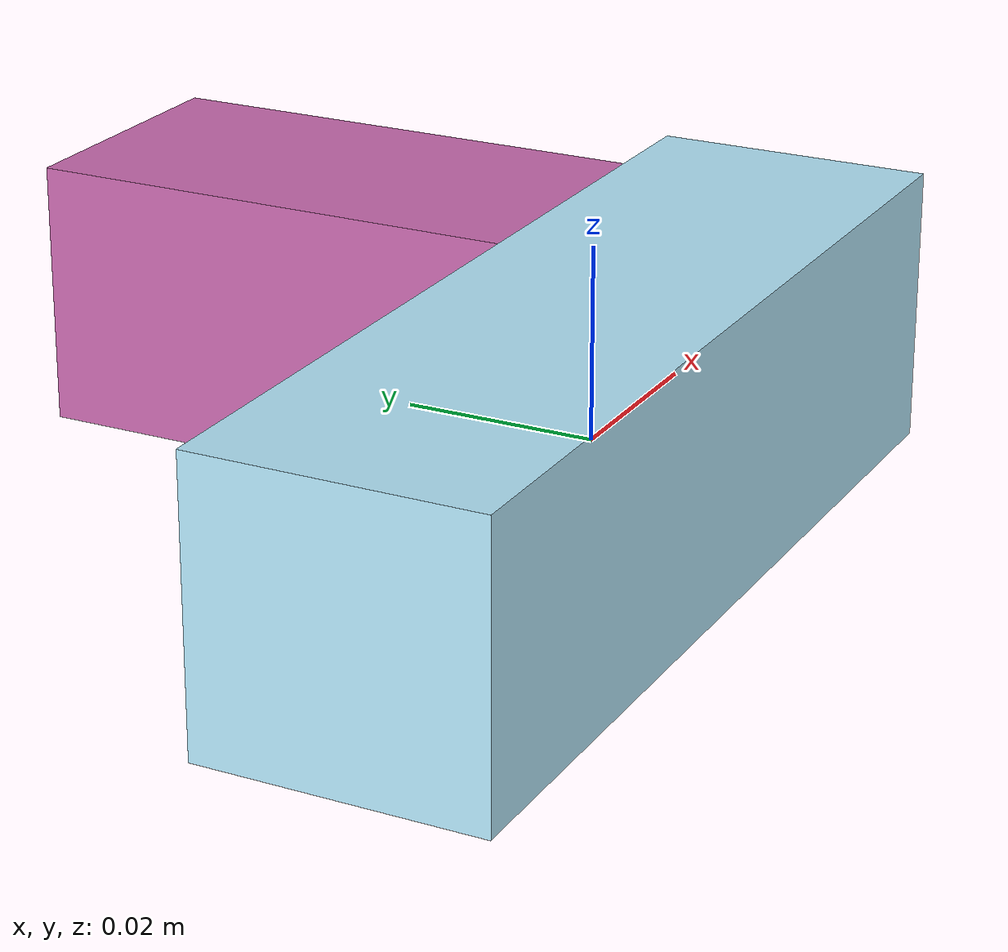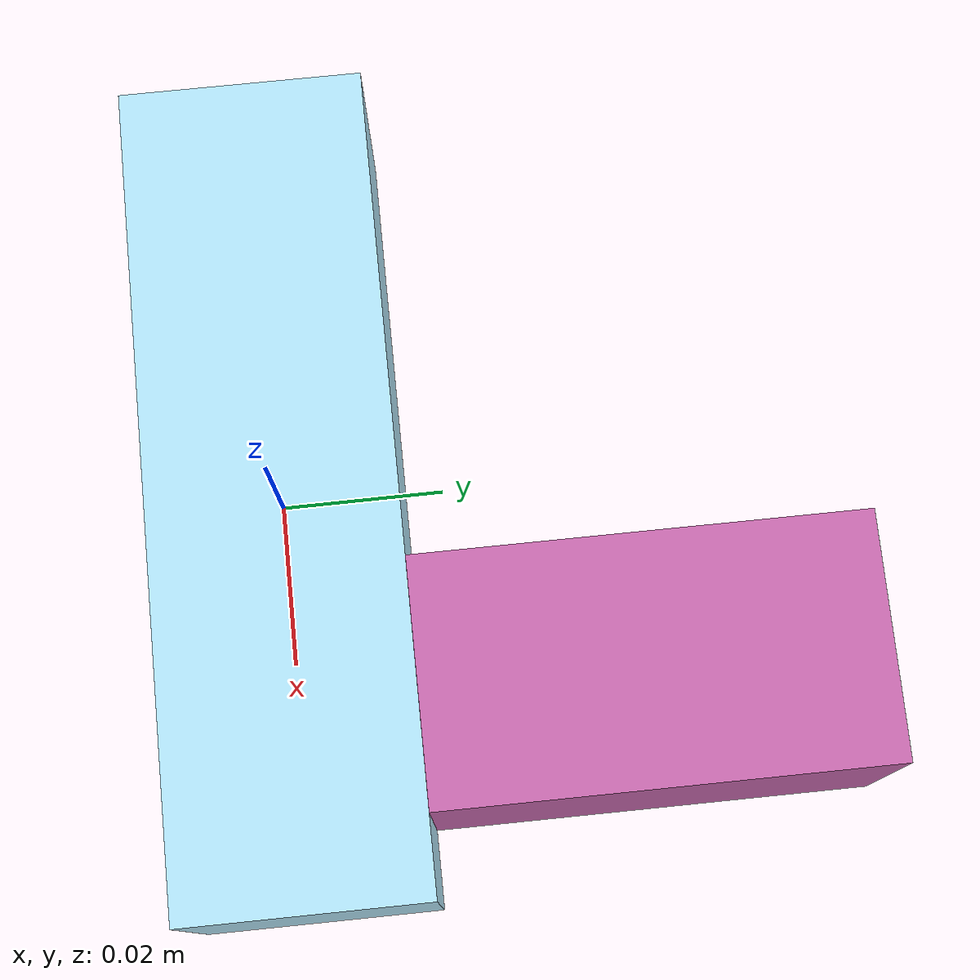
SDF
<sdf version="1.4"><world name="default"><model name="object0"><link name="link1"><pose>0 0 0 0 0 0</pose><inertial><pose>0 0 0 0 0 0</pose><mass>0.05465511372802006</mass><inertia><ixx>8.198267059203008e-06</ixx><ixy>0</ixy><iyy>5.075686736532171e-05</iyy><ixz>0</ixz><iyz>0</iyz><izz>5.075686736532171e-05</izz></inertia></inertial><visual name="link1_visual"><pose>0 0  0 0 0 0</pose><geometry><box><size>0.10121317357040753 0.03 0.03</size></box></geometry><material><diffuse>0.7107370927867822 0.9114370943986676 0.988693223488456 1</diffuse></material></visual><collision><pose>0 0  0 0 0 0</pose><geometry><box><size>0.10121317357040753 0.03 0.03</size></box></geometry></collision></link><link name="link2"><pose>0.025627086221679078 0.03775266871443596 0 0 0 0</pose><inertial><pose>0 0 0 0 0 0</pose><mass>0.03524087695308459</mass><inertia><ixx>1.4977322434264685e-05</ixx><ixy>0</ixy><iyy>5.1128638979433546e-06</iyy><ixz>0</ixz><iyz>0</iyz><izz>1.5150590079284016e-05</izz></inertia></inertial><visual name="link2_visual"><pose>0 0  0 0 0 0</pose><geometry><box><size>0.03 0.06526088324645295 0.028999999999999998</size></box></geometry><material><diffuse>0.8000248119752098 0.4213226038729113 0.6977329986132024 1</diffuse></material></visual><collision><pose>0 0  0 0 0 0</pose><geometry><box><size>0.03 0.06526088324645295 0.028999999999999998</size></box></geometry></collision></link><joint name="link_joint_0" type="fixed"><parent>link1</parent><child>link2</child><pose>0 0 0 0 0 0</pose><axis><xyz>0 0 1</xyz></axis></joint></model></world></sdf>
